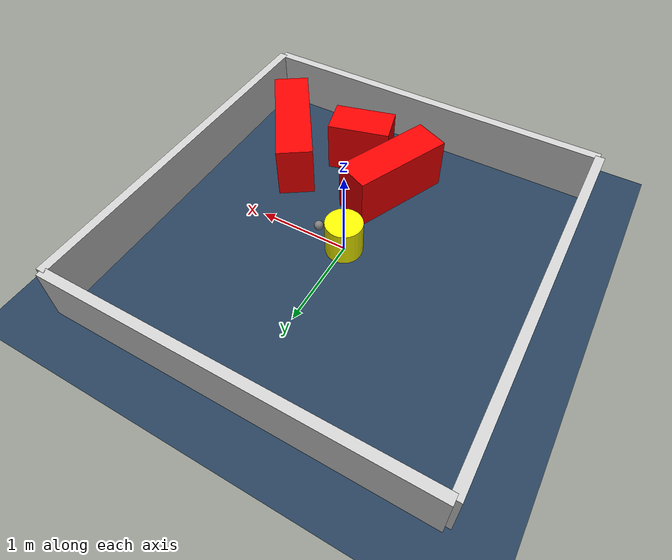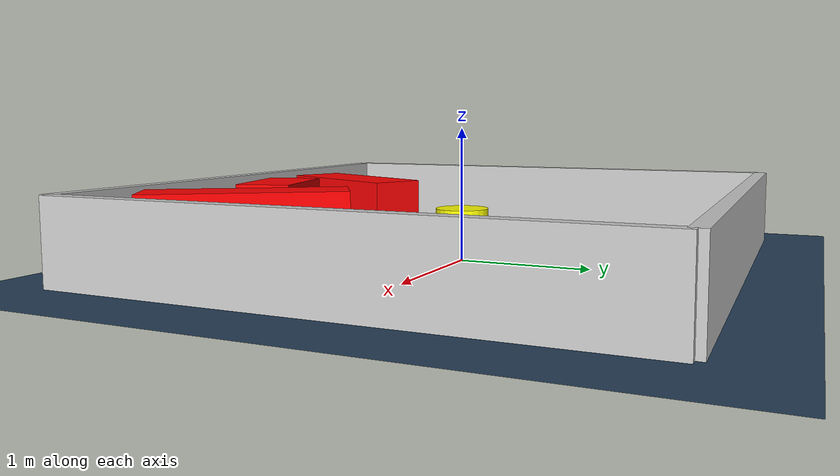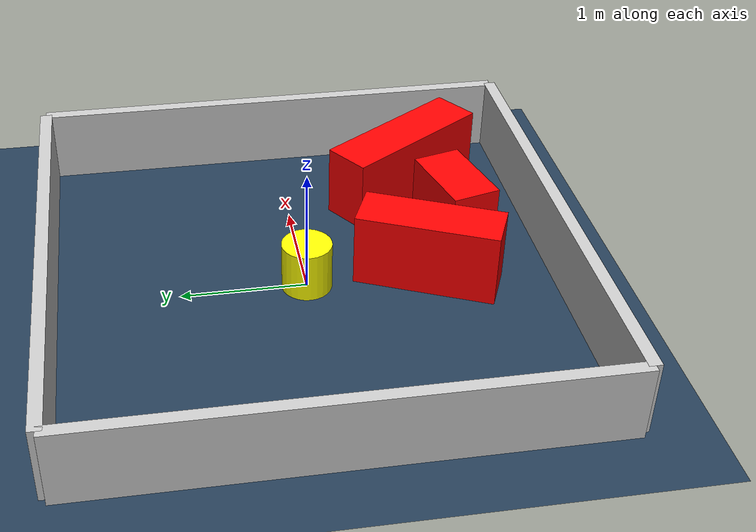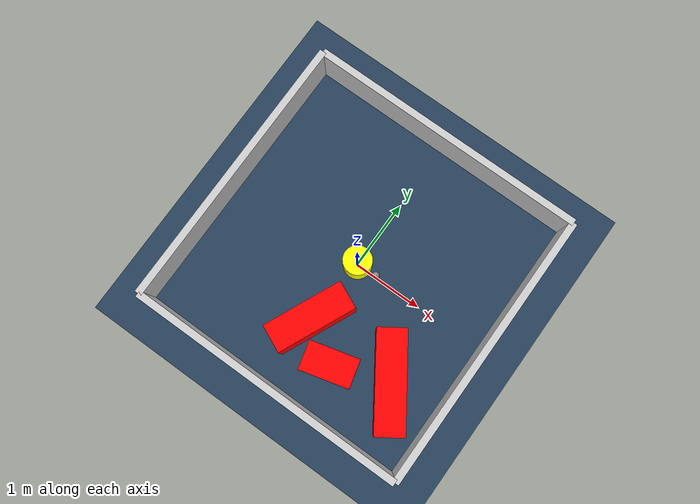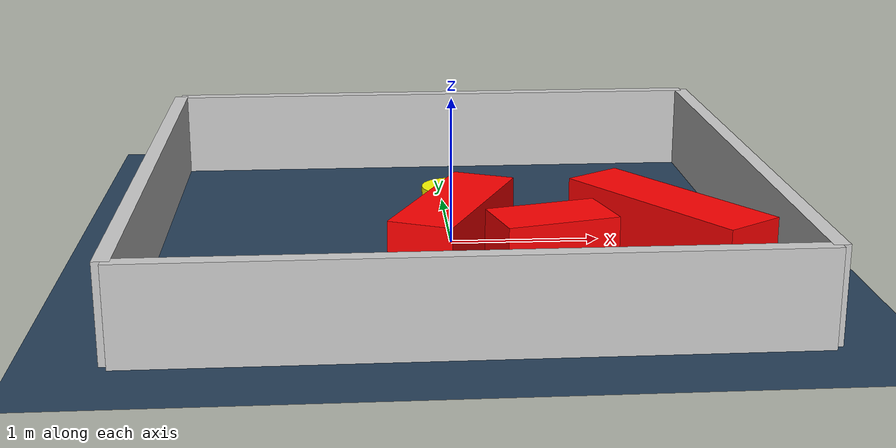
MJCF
<?xml version="1.0" ?>
<mujoco model="generated_environment">
  <option timestep="0.01" integrator="RK4" cone="elliptic"/>
  <default>
    <geom density="1"/>
  </default>
  <asset>
    <texture builtin="gradient" height="3072" rgb1="0.3 0.5 0.7" rgb2="0 0 0" type="skybox" width="512"/>
    <texture builtin="checker" height="300" mark="edge" markrgb="0.8 0.8 0.8" name="groundplane" rgb1="0.2 0.3 0.4" rgb2="0.1 0.2 0.3" type="2d" width="300"/>
    <material name="groundplane" reflectance="0.2" texrepeat="5 5" texture="groundplane" texuniform="true"/>
    <material name="robot" rgba="0.0 1.0 0.0 1"/>
  </asset>
  <worldbody>
    <light dir="0 0 -1" directional="true" pos="0 0 1.5"/>
    <geom condim="4" friction="1.0 0.005 0.001" material="groundplane" name="floor" size="0 0 0.05" type="plane"/>
    <body name="walls">
      <geom name="wall_1" condim="4" pos="-2.0 0.0 0.3" rgba="0.800000011920929 0.800000011920929 0.800000011920929 1.0" size="0.05 2.0 0.3" type="box"/>
      <geom name="wall_2" condim="4" pos="2.0 0.0 0.3" rgba="0.800000011920929 0.800000011920929 0.800000011920929 1.0" size="0.05 2.0 0.3" type="box"/>
      <geom name="wall_3" condim="4" pos="0.0 -2.0 0.3" rgba="0.800000011920929 0.800000011920929 0.800000011920929 1.0" size="2.0 0.05 0.3" type="box"/>
      <geom name="wall_4" condim="4" pos="0.0 2.0 0.3" rgba="0.800000011920929 0.800000011920929 0.800000011920929 1.0" size="2.0 0.05 0.3" type="box"/>
    </body>
    <body name="robot">
      <joint name="joint_x" type="slide" pos="0 0 0" axis="1 0 0"/>
      <joint name="joint_y" type="slide" pos="0 0 0" axis="0 1 0"/>
      <geom name="robot" type="sphere" pos="0.3 0.0 0.2" size="0.05" mass="5." friction="1.0 0.005 0.0001" condim="4" rgba="0.5 0.5 0.5 1.0"/>
      <site name="sensor_ball"/>
    </body>
    <body name="obstacle_movable_1">
      <geom name="obstacle_movable_1" condim="4" pos="0.0 0.0 0.2" euler="0 0 0.0" friction="1.0 0.005 0.001" rgba="1.0 1.0 0.0 1.0" size="0.2 0.2 0.0" type="cylinder" mass="0.1"/>
      <joint type="free"/>
    </body>
    <body name="obstacle_2_static">
      <geom name="obstacle_2_static" condim="4" pos="-0.05597595291519997 -0.9662134100000974 0.3" euler="0 0 65.7067766629529" friction="1.0 0.005 0.001" rgba="1 0 0 1" size="0.5637283889779957 0.2 0.3" type="box"/>
    </body>
    <body name="obstacle_3_static">
      <geom name="obstacle_3_static" condim="4" pos="0.49894687497426315 -1.3042210873760087 0.3" euler="0 0 14.60649701748685" friction="1.0 0.005 0.001" rgba="1 0 0 1" size="0.3450376901041084 0.2 0.3" type="box"/>
    </body>
    <body name="obstacle_4_static">
      <geom name="obstacle_4_static" condim="4" pos="1.2529525643445703 -1.0292513763361804 0.3" euler="0 0 303.84542596257717" friction="1.0 0.005 0.001" rgba="1 0 0 1" size="0.6805154396607747 0.2 0.3" type="box"/>
    </body>
  </worldbody>
  <actuator>
    <motor name="actuator_x" joint="joint_x" gear="1" ctrlrange="-1 1"/>
    <motor name="actuator_y" joint="joint_y" gear="1" ctrlrange="-1 1"/>
  </actuator>
</mujoco>
